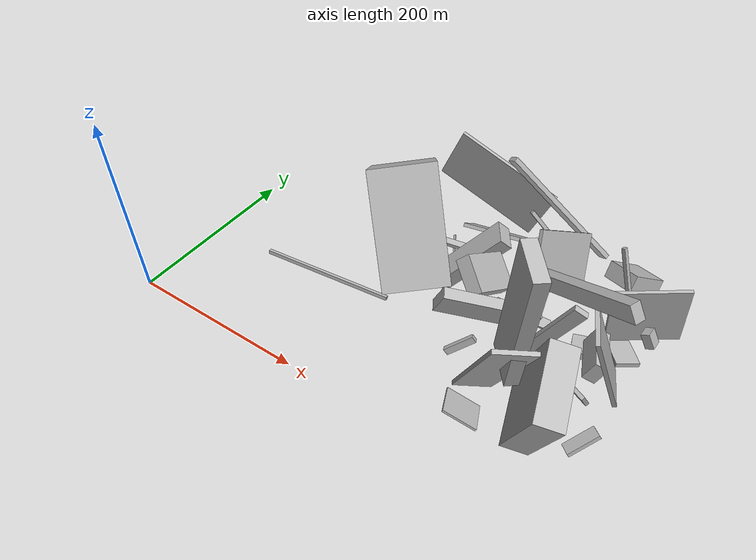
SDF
<sdf version="1.6">
 <world name="default">
  <model name="building_4">
   <static>0</static>
   <pose>263.03647146409895 267.4851656963861 57.26977216846049 -0.03833272961277881 -0.39605690153455275 -3.039207817612073</pose>
   <link name="link">
    <gravity>0</gravity>
    <pose>0 0 31.0 0 0 0</pose>
    <collision name="collision"><geometry><box><size>118 4 62</size></box></geometry></collision>
    <visual name="visual">
     <cast_shadows>0</cast_shadows>
     <geometry><box><size>118 4 62</size></box></geometry>
     <material>
      <script>
       <uri>model://HANNAS_wall/materials/scripts</uri>
       <uri>model://HANNAS_wall/materials/textures</uri>
       <name>vrc/HANNAS_wall</name>
      </script>
     </material>
    </visual>
   </link>
  </model>
  <model name="building_5">
   <static>0</static>
   <pose>285.85517207320754 95.06774827823605 86.93801690492187 0.13493003121150643 -0.5815157832856201 -0.9897055192580434</pose>
   <link name="link">
    <gravity>0</gravity>
    <pose>0 0 54.0 0 0 0</pose>
    <collision name="collision"><geometry><box><size>83 61 108</size></box></geometry></collision>
    <visual name="visual">
     <cast_shadows>0</cast_shadows>
     <geometry><box><size>83 61 108</size></box></geometry>
     <material>
      <script>
       <uri>model://HANNAS_wall/materials/scripts</uri>
       <uri>model://HANNAS_wall/materials/textures</uri>
       <name>vrc/HANNAS_wall</name>
      </script>
     </material>
    </visual>
   </link>
  </model>
  <model name="building_19">
   <static>0</static>
   <pose>472.00417471059876 69.8538557242104 22.926456738517928 -1.0896798849306657 -1.0267276106663328 -2.7639595700852406</pose>
   <link name="link">
    <gravity>0</gravity>
    <pose>0 0 6.5 0 0 0</pose>
    <collision name="collision"><geometry><box><size>4 32 13</size></box></geometry></collision>
    <visual name="visual">
     <cast_shadows>0</cast_shadows>
     <geometry><box><size>4 32 13</size></box></geometry>
     <material>
      <script>
       <uri>model://HANNAS_wall/materials/scripts</uri>
       <uri>model://HANNAS_wall/materials/textures</uri>
       <name>vrc/HANNAS_wall</name>
      </script>
     </material>
    </visual>
   </link>
  </model>
  <model name="building_25">
   <static>0</static>
   <pose>373.0119426935905 138.91956415236365 111.66071159586862 -0.27823387893055074 -1.0244783643637487 2.9327266899046176</pose>
   <link name="link">
    <gravity>0</gravity>
    <pose>0 0 75.0 0 0 0</pose>
    <collision name="collision"><geometry><box><size>16 9 150</size></box></geometry></collision>
    <visual name="visual">
     <cast_shadows>0</cast_shadows>
     <geometry><box><size>16 9 150</size></box></geometry>
     <material>
      <script>
       <uri>model://HANNAS_wall/materials/scripts</uri>
       <uri>model://HANNAS_wall/materials/textures</uri>
       <name>vrc/HANNAS_wall</name>
      </script>
     </material>
    </visual>
   </link>
  </model>
  <model name="building_30">
   <static>0</static>
   <pose>351.01289641679364 266.13602024073055 46.52521317034503 -2.4450187673026265 -0.8097752759222964 -2.927714700753296</pose>
   <link name="link">
    <gravity>0</gravity>
    <pose>0 0 2.0 0 0 0</pose>
    <collision name="collision"><geometry><box><size>82 5 4</size></box></geometry></collision>
    <visual name="visual">
     <cast_shadows>0</cast_shadows>
     <geometry><box><size>82 5 4</size></box></geometry>
     <material>
      <script>
       <uri>model://HANNAS_wall/materials/scripts</uri>
       <uri>model://HANNAS_wall/materials/textures</uri>
       <name>vrc/HANNAS_wall</name>
      </script>
     </material>
    </visual>
   </link>
  </model>
  <model name="building_32">
   <static>0</static>
   <pose>447.25743173991134 59.5828461271806 63.03762369217427 0.8699033775675232 -1.1600909487752653 -0.5154917881440723</pose>
   <link name="link">
    <gravity>0</gravity>
    <pose>0 0 13.5 0 0 0</pose>
    <collision name="collision"><geometry><box><size>86 73 27</size></box></geometry></collision>
    <visual name="visual">
     <cast_shadows>0</cast_shadows>
     <geometry><box><size>86 73 27</size></box></geometry>
     <material>
      <script>
       <uri>model://HANNAS_wall/materials/scripts</uri>
       <uri>model://HANNAS_wall/materials/textures</uri>
       <name>vrc/HANNAS_wall</name>
      </script>
     </material>
    </visual>
   </link>
  </model>
  <model name="building_33">
   <static>0</static>
   <pose>290.1351687367234 236.48648257057675 13.083177044019566 1.4321704329737104 0.003907793590486828 -1.2718227332262604</pose>
   <link name="link">
    <gravity>0</gravity>
    <pose>0 0 66.0 0 0 0</pose>
    <collision name="collision"><geometry><box><size>9 4 132</size></box></geometry></collision>
    <visual name="visual">
     <cast_shadows>0</cast_shadows>
     <geometry><box><size>9 4 132</size></box></geometry>
     <material>
      <script>
       <uri>model://HANNAS_wall/materials/scripts</uri>
       <uri>model://HANNAS_wall/materials/textures</uri>
       <name>vrc/HANNAS_wall</name>
      </script>
     </material>
    </visual>
   </link>
  </model>
  <model name="building_34">
   <static>0</static>
   <pose>444.17196289707096 228.60955305083277 54.83331223394984 1.6094641841759407 0.3900204075560647 2.865676450977857</pose>
   <link name="link">
    <gravity>0</gravity>
    <pose>0 0 2.0 0 0 0</pose>
    <collision name="collision"><geometry><box><size>4 88 4</size></box></geometry></collision>
    <visual name="visual">
     <cast_shadows>0</cast_shadows>
     <geometry><box><size>4 88 4</size></box></geometry>
     <material>
      <script>
       <uri>model://HANNAS_wall/materials/scripts</uri>
       <uri>model://HANNAS_wall/materials/textures</uri>
       <name>vrc/HANNAS_wall</name>
      </script>
     </material>
    </visual>
   </link>
  </model>
  <model name="building_36">
   <static>0</static>
   <pose>440.44851173203875 199.91031694396088 38.90976830088263 1.5041174146947904 -0.01043804281663071 2.134613622329355</pose>
   <link name="link">
    <gravity>0</gravity>
    <pose>0 0 37.0 0 0 0</pose>
    <collision name="collision"><geometry><box><size>4 67 74</size></box></geometry></collision>
    <visual name="visual">
     <cast_shadows>0</cast_shadows>
     <geometry><box><size>4 67 74</size></box></geometry>
     <material>
      <script>
       <uri>model://HANNAS_wall/materials/scripts</uri>
       <uri>model://HANNAS_wall/materials/textures</uri>
       <name>vrc/HANNAS_wall</name>
      </script>
     </material>
    </visual>
   </link>
  </model>
  <model name="building_44">
   <static>0</static>
   <pose>399.6212533064511 223.2782744224587 70.91785444697206 -0.7179844604672067 -0.923344178492602 1.9558265253955083</pose>
   <link name="link">
    <gravity>0</gravity>
    <pose>0 0 36.5 0 0 0</pose>
    <collision name="collision"><geometry><box><size>58 4 73</size></box></geometry></collision>
    <visual name="visual">
     <cast_shadows>0</cast_shadows>
     <geometry><box><size>58 4 73</size></box></geometry>
     <material>
      <script>
       <uri>model://HANNAS_wall/materials/scripts</uri>
       <uri>model://HANNAS_wall/materials/textures</uri>
       <name>vrc/HANNAS_wall</name>
      </script>
     </material>
    </visual>
   </link>
  </model>
  <model name="building_46">
   <static>0</static>
   <pose>341.77466628804825 140.5615206427859 64.71192747775166 0.9030203522750172 -0.49533664817273704 -1.8058443134780096</pose>
   <link name="link">
    <gravity>0</gravity>
    <pose>0 0 19.0 0 0 0</pose>
    <collision name="collision"><geometry><box><size>54 16 38</size></box></geometry></collision>
    <visual name="visual">
     <cast_shadows>0</cast_shadows>
     <geometry><box><size>54 16 38</size></box></geometry>
     <material>
      <script>
       <uri>model://HANNAS_wall/materials/scripts</uri>
       <uri>model://HANNAS_wall/materials/textures</uri>
       <name>vrc/HANNAS_wall</name>
      </script>
     </material>
    </visual>
   </link>
  </model>
  <model name="building_47">
   <static>0</static>
   <pose>439.06787938644027 166.85211575531372 17.96984781514588 -0.03253739653758626 0.1433754381088489 1.876050689655403</pose>
   <link name="link">
    <gravity>0</gravity>
    <pose>0 0 3.5 0 0 0</pose>
    <collision name="collision"><geometry><box><size>27 35 7</size></box></geometry></collision>
    <visual name="visual">
     <cast_shadows>0</cast_shadows>
     <geometry><box><size>27 35 7</size></box></geometry>
     <material>
      <script>
       <uri>model://HANNAS_wall/materials/scripts</uri>
       <uri>model://HANNAS_wall/materials/textures</uri>
       <name>vrc/HANNAS_wall</name>
      </script>
     </material>
    </visual>
   </link>
  </model>
  <model name="building_50">
   <static>0</static>
   <pose>364.5477886768533 229.2090518336988 25.94396227206424 1.6446722120407755 0.2002600968755134 -0.08162997838149966</pose>
   <link name="link">
    <gravity>0</gravity>
    <pose>0 0 32.0 0 0 0</pose>
    <collision name="collision"><geometry><box><size>11 13 64</size></box></geometry></collision>
    <visual name="visual">
     <cast_shadows>0</cast_shadows>
     <geometry><box><size>11 13 64</size></box></geometry>
     <material>
      <script>
       <uri>model://HANNAS_wall/materials/scripts</uri>
       <uri>model://HANNAS_wall/materials/textures</uri>
       <name>vrc/HANNAS_wall</name>
      </script>
     </material>
    </visual>
   </link>
  </model>
  <model name="building_52">
   <static>0</static>
   <pose>347.52881307916164 261.60120713949317 88.8292002017037 0.933617160002334 -0.522816494959689 1.3253689435234117</pose>
   <link name="link">
    <gravity>0</gravity>
    <pose>0 0 6.5 0 0 0</pose>
    <collision name="collision"><geometry><box><size>5 150 13</size></box></geometry></collision>
    <visual name="visual">
     <cast_shadows>0</cast_shadows>
     <geometry><box><size>5 150 13</size></box></geometry>
     <material>
      <script>
       <uri>model://HANNAS_wall/materials/scripts</uri>
       <uri>model://HANNAS_wall/materials/textures</uri>
       <name>vrc/HANNAS_wall</name>
      </script>
     </material>
    </visual>
   </link>
  </model>
  <model name="building_54">
   <static>0</static>
   <pose>296.54625090478214 184.01440281856296 40.30643598195662 -1.427825337167217 -0.8134062605364885 0.5019441139701522</pose>
   <link name="link">
    <gravity>0</gravity>
    <pose>0 0 13.5 0 0 0</pose>
    <collision name="collision"><geometry><box><size>92 16 27</size></box></geometry></collision>
    <visual name="visual">
     <cast_shadows>0</cast_shadows>
     <geometry><box><size>92 16 27</size></box></geometry>
     <material>
      <script>
       <uri>model://HANNAS_wall/materials/scripts</uri>
       <uri>model://HANNAS_wall/materials/textures</uri>
       <name>vrc/HANNAS_wall</name>
      </script>
     </material>
    </visual>
   </link>
  </model>
  <model name="building_56">
   <static>0</static>
   <pose>442.5566771360339 166.95651427035529 41.0105760000384 1.523225140470744 0.4346242677337635 0.3567465093203285</pose>
   <link name="link">
    <gravity>0</gravity>
    <pose>0 0 23.0 0 0 0</pose>
    <collision name="collision"><geometry><box><size>14 22 46</size></box></geometry></collision>
    <visual name="visual">
     <cast_shadows>0</cast_shadows>
     <geometry><box><size>14 22 46</size></box></geometry>
     <material>
      <script>
       <uri>model://HANNAS_wall/materials/scripts</uri>
       <uri>model://HANNAS_wall/materials/textures</uri>
       <name>vrc/HANNAS_wall</name>
      </script>
     </material>
    </visual>
   </link>
  </model>
  <model name="building_62">
   <static>0</static>
   <pose>401.0155834456745 56.71906677797831 85.97063583320507 0.0970630681758852 0.033586584966408796 0.7181598448066655</pose>
   <link name="link">
    <gravity>0</gravity>
    <pose>0 0 65.5 0 0 0</pose>
    <collision name="collision"><geometry><box><size>13 42 131</size></box></geometry></collision>
    <visual name="visual">
     <cast_shadows>0</cast_shadows>
     <geometry><box><size>13 42 131</size></box></geometry>
     <material>
      <script>
       <uri>model://HANNAS_wall/materials/scripts</uri>
       <uri>model://HANNAS_wall/materials/textures</uri>
       <name>vrc/HANNAS_wall</name>
      </script>
     </material>
    </visual>
   </link>
  </model>
  <model name="building_68">
   <static>0</static>
   <pose>229.3015660521827 124.50319786930072 4.306890959513431 -1.4606720908331337 -1.3525379000011428 1.5818155971254229</pose>
   <link name="link">
    <gravity>0</gravity>
    <pose>0 0 75.0 0 0 0</pose>
    <collision name="collision"><geometry><box><size>4 4 150</size></box></geometry></collision>
    <visual name="visual">
     <cast_shadows>0</cast_shadows>
     <geometry><box><size>4 4 150</size></box></geometry>
     <material>
      <script>
       <uri>model://HANNAS_wall/materials/scripts</uri>
       <uri>model://HANNAS_wall/materials/textures</uri>
       <name>vrc/HANNAS_wall</name>
      </script>
     </material>
    </visual>
   </link>
  </model>
  <model name="building_72">
   <static>0</static>
   <pose>398.7922069160958 94.20769095898486 72.98723140897995 2.085359919684713 -0.04547290217118745 1.8387253127943208</pose>
   <link name="link">
    <gravity>0</gravity>
    <pose>0 0 6.5 0 0 0</pose>
    <collision name="collision"><geometry><box><size>6 145 13</size></box></geometry></collision>
    <visual name="visual">
     <cast_shadows>0</cast_shadows>
     <geometry><box><size>6 145 13</size></box></geometry>
     <material>
      <script>
       <uri>model://HANNAS_wall/materials/scripts</uri>
       <uri>model://HANNAS_wall/materials/textures</uri>
       <name>vrc/HANNAS_wall</name>
      </script>
     </material>
    </visual>
   </link>
  </model>
  <model name="building_76">
   <static>0</static>
   <pose>393.0741695974125 127.01412661893369 72.99812024967832 0.7765898266789364 -1.1101700875491662 -0.1923975803825443</pose>
   <link name="link">
    <gravity>0</gravity>
    <pose>0 0 46.5 0 0 0</pose>
    <collision name="collision"><geometry><box><size>28 11 93</size></box></geometry></collision>
    <visual name="visual">
     <cast_shadows>0</cast_shadows>
     <geometry><box><size>28 11 93</size></box></geometry>
     <material>
      <script>
       <uri>model://HANNAS_wall/materials/scripts</uri>
       <uri>model://HANNAS_wall/materials/textures</uri>
       <name>vrc/HANNAS_wall</name>
      </script>
     </material>
    </visual>
   </link>
  </model>
  <model name="building_78">
   <static>0</static>
   <pose>387.1365662876785 115.80155063166166 29.557443774262637 -0.10083407669697729 -0.10972714902840978 -0.44136030987701014</pose>
   <link name="link">
    <gravity>0</gravity>
    <pose>0 0 18.0 0 0 0</pose>
    <collision name="collision"><geometry><box><size>54 4 36</size></box></geometry></collision>
    <visual name="visual">
     <cast_shadows>0</cast_shadows>
     <geometry><box><size>54 4 36</size></box></geometry>
     <material>
      <script>
       <uri>model://HANNAS_wall/materials/scripts</uri>
       <uri>model://HANNAS_wall/materials/textures</uri>
       <name>vrc/HANNAS_wall</name>
      </script>
     </material>
    </visual>
   </link>
  </model>
  <model name="building_79">
   <static>0</static>
   <pose>463.47102023159573 121.9235813090975 68.86295215412774 1.2368485411009702 -0.11830355955172388 2.0160309293347374</pose>
   <link name="link">
    <gravity>0</gravity>
    <pose>0 0 2.0 0 0 0</pose>
    <collision name="collision"><geometry><box><size>38 98 4</size></box></geometry></collision>
    <visual name="visual">
     <cast_shadows>0</cast_shadows>
     <geometry><box><size>38 98 4</size></box></geometry>
     <material>
      <script>
       <uri>model://HANNAS_wall/materials/scripts</uri>
       <uri>model://HANNAS_wall/materials/textures</uri>
       <name>vrc/HANNAS_wall</name>
      </script>
     </material>
    </visual>
   </link>
  </model>
  <model name="building_81">
   <static>0</static>
   <pose>475.25755315259835 194.35088072581226 12.361568189864673 -0.8300964725570033 -1.4193256601590558 1.5196397154113301</pose>
   <link name="link">
    <gravity>0</gravity>
    <pose>0 0 12.0 0 0 0</pose>
    <collision name="collision"><geometry><box><size>4 33 24</size></box></geometry></collision>
    <visual name="visual">
     <cast_shadows>0</cast_shadows>
     <geometry><box><size>4 33 24</size></box></geometry>
     <material>
      <script>
       <uri>model://HANNAS_wall/materials/scripts</uri>
       <uri>model://HANNAS_wall/materials/textures</uri>
       <name>vrc/HANNAS_wall</name>
      </script>
     </material>
    </visual>
   </link>
  </model>
  <model name="building_84">
   <static>0</static>
   <pose>428.20641415116825 129.5967520074904 12.03798640516381 0.5057583110031555 -0.027181290949904416 -0.46189225997810296</pose>
   <link name="link">
    <gravity>0</gravity>
    <pose>0 0 8.0 0 0 0</pose>
    <collision name="collision"><geometry><box><size>79 4 16</size></box></geometry></collision>
    <visual name="visual">
     <cast_shadows>0</cast_shadows>
     <geometry><box><size>79 4 16</size></box></geometry>
     <material>
      <script>
       <uri>model://HANNAS_wall/materials/scripts</uri>
       <uri>model://HANNAS_wall/materials/textures</uri>
       <name>vrc/HANNAS_wall</name>
      </script>
     </material>
    </visual>
   </link>
  </model>
  <model name="building_86">
   <static>0</static>
   <pose>294.2625624585368 217.05439110583288 5.653396289206816 0.2097669983196881 0.5970080775975366 1.1661427909326982</pose>
   <link name="link">
    <gravity>0</gravity>
    <pose>0 0 2.0 0 0 0</pose>
    <collision name="collision"><geometry><box><size>6 20 4</size></box></geometry></collision>
    <visual name="visual">
     <cast_shadows>0</cast_shadows>
     <geometry><box><size>6 20 4</size></box></geometry>
     <material>
      <script>
       <uri>model://HANNAS_wall/materials/scripts</uri>
       <uri>model://HANNAS_wall/materials/textures</uri>
       <name>vrc/HANNAS_wall</name>
      </script>
     </material>
    </visual>
   </link>
  </model>
  <model name="building_91">
   <static>0</static>
   <pose>439.6095269611542 265.1792820112574 25.746682658300692 0.4953623896388719 0.23529565245157005 2.6635352182325382</pose>
   <link name="link">
    <gravity>0</gravity>
    <pose>0 0 9.0 0 0 0</pose>
    <collision name="collision"><geometry><box><size>38 41 18</size></box></geometry></collision>
    <visual name="visual">
     <cast_shadows>0</cast_shadows>
     <geometry><box><size>38 41 18</size></box></geometry>
     <material>
      <script>
       <uri>model://HANNAS_wall/materials/scripts</uri>
       <uri>model://HANNAS_wall/materials/textures</uri>
       <name>vrc/HANNAS_wall</name>
      </script>
     </material>
    </visual>
   </link>
  </model>
  <model name="building_95">
   <static>0</static>
   <pose>375.1095601127718 41.797966808486 76.20975025080816 -1.8470964832364964 -1.0660370814617657 -0.6861937754410381</pose>
   <link name="link">
    <gravity>0</gravity>
    <pose>0 0 19.0 0 0 0</pose>
    <collision name="collision"><geometry><box><size>150 4 38</size></box></geometry></collision>
    <visual name="visual">
     <cast_shadows>0</cast_shadows>
     <geometry><box><size>150 4 38</size></box></geometry>
     <material>
      <script>
       <uri>model://HANNAS_wall/materials/scripts</uri>
       <uri>model://HANNAS_wall/materials/textures</uri>
       <name>vrc/HANNAS_wall</name>
      </script>
     </material>
    </visual>
   </link>
  </model>
  <model name="building_110">
   <static>0</static>
   <pose>433.3177318730662 101.3781787160184 23.964798636119667 1.9050285215325868 -0.45181794633911176 -2.9857090606160033</pose>
   <link name="link">
    <gravity>0</gravity>
    <pose>0 0 4.0 0 0 0</pose>
    <collision name="collision"><geometry><box><size>38 2 8</size></box></geometry></collision>
    <visual name="visual">
     <cast_shadows>0</cast_shadows>
     <geometry><box><size>38 2 8</size></box></geometry>
     <material>
      <script>
       <uri>model://HANNAS_wall/materials/scripts</uri>
       <uri>model://HANNAS_wall/materials/textures</uri>
       <name>vrc/HANNAS_wall</name>
      </script>
     </material>
    </visual>
   </link>
  </model>
  <model name="building_115">
   <static>0</static>
   <pose>373.0599684135748 39.175772071118786 20.85646752863116 2.6822907487054697 -0.3088502272165773 -1.1588479811041548</pose>
   <link name="link">
    <gravity>0</gravity>
    <pose>0 0 1.0 0 0 0</pose>
    <collision name="collision"><geometry><box><size>35 35 2</size></box></geometry></collision>
    <visual name="visual">
     <cast_shadows>0</cast_shadows>
     <geometry><box><size>35 35 2</size></box></geometry>
     <material>
      <script>
       <uri>model://HANNAS_wall/materials/scripts</uri>
       <uri>model://HANNAS_wall/materials/textures</uri>
       <name>vrc/HANNAS_wall</name>
      </script>
     </material>
    </visual>
   </link>
  </model>
  <model name="building_117">
   <static>0</static>
   <pose>483.6145754691559 208.38600544829717 32.16407984165323 -1.5329695528945402 -1.039391600676585 3.0742064053675398</pose>
   <link name="link">
    <gravity>0</gravity>
    <pose>0 0 6.0 0 0 0</pose>
    <collision name="collision"><geometry><box><size>17 9 12</size></box></geometry></collision>
    <visual name="visual">
     <cast_shadows>0</cast_shadows>
     <geometry><box><size>17 9 12</size></box></geometry>
     <material>
      <script>
       <uri>model://HANNAS_wall/materials/scripts</uri>
       <uri>model://HANNAS_wall/materials/textures</uri>
       <name>vrc/HANNAS_wall</name>
      </script>
     </material>
    </visual>
   </link>
  </model>
  <model name="building_118">
   <static>0</static>
   <pose>329.95653955870546 79.60188601626169 31.272555038565294 -0.3027748034681801 0.9011647314854404 0.19103204065405027</pose>
   <link name="link">
    <gravity>0</gravity>
    <pose>0 0 16.0 0 0 0</pose>
    <collision name="collision"><geometry><box><size>7 5 32</size></box></geometry></collision>
    <visual name="visual">
     <cast_shadows>0</cast_shadows>
     <geometry><box><size>7 5 32</size></box></geometry>
     <material>
      <script>
       <uri>model://HANNAS_wall/materials/scripts</uri>
       <uri>model://HANNAS_wall/materials/textures</uri>
       <name>vrc/HANNAS_wall</name>
      </script>
     </material>
    </visual>
   </link>
  </model>
  <model name="building_121">
   <static>0</static>
   <pose>364.4933696128908 173.56249448244193 17.209089648783625 -0.10009792732134667 -0.45857532723670025 -2.6528771375919873</pose>
   <link name="link">
    <gravity>0</gravity>
    <pose>0 0 1.0 0 0 0</pose>
    <collision name="collision"><geometry><box><size>63 14 2</size></box></geometry></collision>
    <visual name="visual">
     <cast_shadows>0</cast_shadows>
     <geometry><box><size>63 14 2</size></box></geometry>
     <material>
      <script>
       <uri>model://HANNAS_wall/materials/scripts</uri>
       <uri>model://HANNAS_wall/materials/textures</uri>
       <name>vrc/HANNAS_wall</name>
      </script>
     </material>
    </visual>
   </link>
  </model>
  <model name="building_130">
   <static>0</static>
   <pose>238.1388069983892 247.73923920086395 7.872733711840356 1.7235729870674643 -0.6022195237313949 0.43160481981681226</pose>
   <link name="link">
    <gravity>0</gravity>
    <pose>0 0 20.0 0 0 0</pose>
    <collision name="collision"><geometry><box><size>2 2 40</size></box></geometry></collision>
    <visual name="visual">
     <cast_shadows>0</cast_shadows>
     <geometry><box><size>2 2 40</size></box></geometry>
     <material>
      <script>
       <uri>model://HANNAS_wall/materials/scripts</uri>
       <uri>model://HANNAS_wall/materials/textures</uri>
       <name>vrc/HANNAS_wall</name>
      </script>
     </material>
    </visual>
   </link>
  </model>
  <model name="building_133">
   <static>0</static>
   <pose>296.1190148662141 241.98794909710975 41.6709159799677 0.20513698650441947 -0.6012106891828111 -1.6809680985907192</pose>
   <link name="link">
    <gravity>0</gravity>
    <pose>0 0 2.0 0 0 0</pose>
    <collision name="collision"><geometry><box><size>23 78 4</size></box></geometry></collision>
    <visual name="visual">
     <cast_shadows>0</cast_shadows>
     <geometry><box><size>23 78 4</size></box></geometry>
     <material>
      <script>
       <uri>model://HANNAS_wall/materials/scripts</uri>
       <uri>model://HANNAS_wall/materials/textures</uri>
       <name>vrc/HANNAS_wall</name>
      </script>
     </material>
    </visual>
   </link>
  </model>
 </world>
</sdf>
